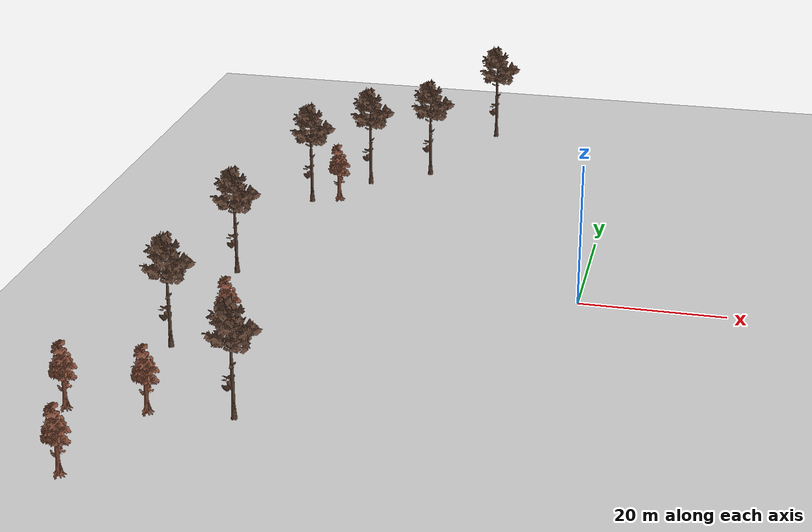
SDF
<sdf version="1.5">
 <world name="nasa_back40">
  <scene>
   <ambient>0.5 0.5 0.5 1</ambient>
   <background>0.5 0.5 0.5 1</background>
   <shadows>true</shadows>
   <sky><clouds><speed>2</speed><mean_size>0.1</mean_size></clouds><time>12</time></sky>
   <grid>false</grid>
  </scene>
  <physics type="ode">
   <gravity>0 0 -9.81</gravity>
   <ode>
    <solver><type>quick</type><iters>10</iters><sor>1.3</sor></solver>
    <constraints>
     <cfm>0.0</cfm>
     <erp>0.2</erp>
     <contact_max_correcting_vel>10</contact_max_correcting_vel>
     <contact_surface_layer>0.001</contact_surface_layer>
    </constraints>
   </ode>
   <max_step_size>0.001</max_step_size>
  </physics>
  <light type="directional" name="directional_light_1">
   <pose>0 20 20 0.1 0.1 0</pose>
   <diffuse>1 1 1 1</diffuse>
   <specular>1 1 1 1</specular>
   <attenuation><range>300</range></attenuation>
   <direction>0.1 0.1 -1</direction>
   <cast_shadows>false</cast_shadows>
  </light>
  <include><uri>model://nasa_larc</uri><pose>63 146 0 0 0 0</pose></include>
  <model name="tall_pine">
   <pose>-29.5587 42.137 0 0 -0 0</pose>
   <include><uri>model://tall_pine</uri></include>
  </model>
  <model name="tall_pine_0">
   <pose>-38.0614 36.2933 0 0 -0 0</pose>
   <include><uri>model://tall_pine</uri></include>
  </model>
  <model name="tall_pine_1">
   <pose>-22.1543 61.892 0 0 -0 0</pose>
   <include><uri>model://tall_pine</uri></include>
  </model>
  <model name="tall_pine_2">
   <pose>-49.8032 -23.6082 0 0 -0 0</pose>
   <include><uri>model://tall_pine</uri></include>
  </model>
  <model name="tall_pine_3">
   <pose>-36.0355 -39.4061 0 0 -0 0</pose>
   <include><uri>model://tall_pine</uri></include>
  </model>
  <model name="tall_pine_4">
   <pose>-45.2689 27.2457 0 0 -0 0</pose>
   <include><uri>model://tall_pine</uri></include>
  </model>
  <model name="tall_pine_5">
   <pose>-48.5355 -0.279318 0 0 -0 0</pose>
   <include><uri>model://tall_pine</uri></include>
  </model>
  <model name="sequoia">
   <pose>-42.995 -20.4455 0 0 -0 0</pose>
   <include><uri>model://sequoia</uri></include>
  </model>
  <model name="sequoia_0">
   <pose>-41.2574 28.6001 0 0 -0 0</pose>
   <include><uri>model://sequoia</uri></include>
  </model>
  <model name="sequoia_1">
   <pose>-46.6377 -40.2993 0 0 -0 0</pose>
   <include><uri>model://sequoia</uri></include>
  </model>
  <model name="sequoia_2">
   <pose>-51.2812 -55.4727 0 0 -0 0</pose>
   <include><uri>model://sequoia</uri></include>
  </model>
  <model name="sequoia_3">
   <pose>-56.5656 -41.4919 0 0 -0 0</pose>
   <include><uri>model://sequoia</uri></include>
  </model>
 </world>
</sdf>

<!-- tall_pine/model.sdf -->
<sdf version="1.5">
  <model name="tall_pine">
    <static>true</static>
    <link name="link">
      <collision name='collision_trunk'>
        <pose frame=''>0 0 4.5 0 -0 0</pose>
        <geometry>
          <cylinder>
            <radius>0.4</radius>
            <length>9</length>
          </cylinder>
        </geometry>
      </collision>
      <collision name='collision_top'>
        <pose>0 0 12.25 0 -0 0</pose>
        <geometry>
          <box>
            <size>5 6 6.5</size>
          </box>
        </geometry>
      </collision>

      <visual name="visual">
        <pose>0 0 0 0 0 0</pose>
        <geometry>
          <mesh>
            <uri>model://tall_pine/meshes/tall_pine_lowpoly.dae</uri>
          </mesh>
        </geometry>
        <material>
          <script>
            <uri>model://tall_pine/materials/scripts</uri>
            <uri>model://tall_pine/materials/textures</uri>
            <name>trees/tall_pine</name>
          </script>
        </material>
      </visual>

    </link>
  </model>
</sdf>

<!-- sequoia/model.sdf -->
<sdf version="1.5">
  <model name="sequoia">
    <static>true</static>
    <link name="link">
      <collision name='collision_trunk'>
        <pose>0 0 2 0 -0 0</pose>
        <geometry>
          <cylinder>
            <radius>0.5</radius>
            <length>4</length>
          </cylinder>
        </geometry>
      </collision>
      <collision name='collision_top'>
        <pose>0 0 6.5 0 -0 0</pose>
        <geometry>
          <box>
            <size>3 3 5</size>
          </box>
        </geometry>
      </collision>

      <visual name="visual">
        <pose>0 0 0 0 0 0</pose>
        <geometry>
          <mesh>
            <uri>model://sequoia/meshes/sequoia_lowpoly.dae</uri>
          </mesh>
        </geometry>
        <material>
          <script>
            <uri>model://sequoia/materials/scripts</uri>
            <uri>model://sequoia/materials/textures</uri>
            <name>trees/sequoia</name>
          </script>
        </material>
      </visual>

    </link>
  </model>
</sdf>

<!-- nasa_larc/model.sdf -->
<sdf version="1.5">
<model name="nasa_larc">
  <static>true</static>
    <link name="link">
      <collision name="collision">
        <geometry>
          <plane>
            <normal>0 0 1</normal>
            <size>675 251</size>
          </plane>
        </geometry>
        <surface>
          <friction>
            <ode>
              <mu>1</mu>
              <mu2>1</mu2>
            </ode>
          </friction>
        </surface>
      </collision>

      <visual name="visual">
        <pose>0 0 0 0 0 -1.5708</pose>
        <cast_shadows>false</cast_shadows>
        <geometry>
          <plane>
            <normal>0 0 1</normal>
            <size>675 251</size>
          </plane>
        </geometry>
        <material>
          <script>
            <uri>model://nasa_larc/materials/scripts/</uri>
            <uri>model://nasa_larc/materials/textures/</uri>
            <name>larc_back40</name>
          </script>
        </material>
      </visual>

    </link>
  </model>
</sdf>
